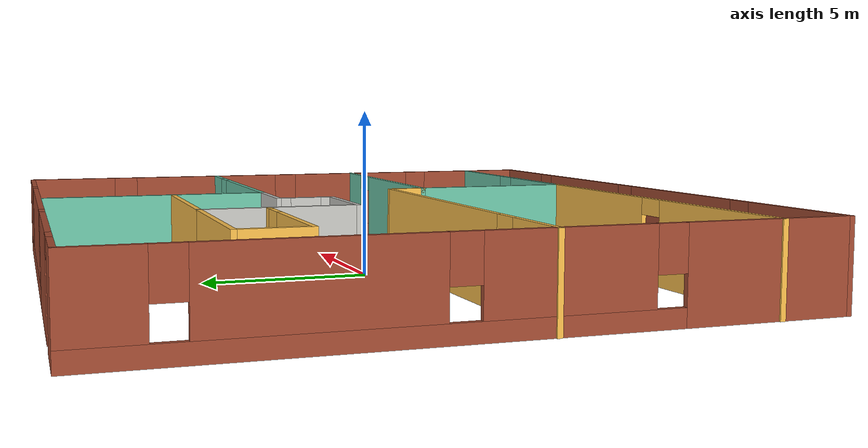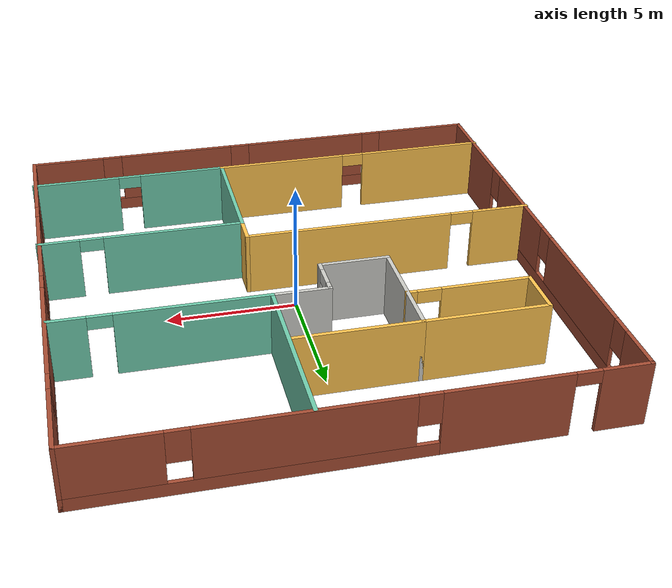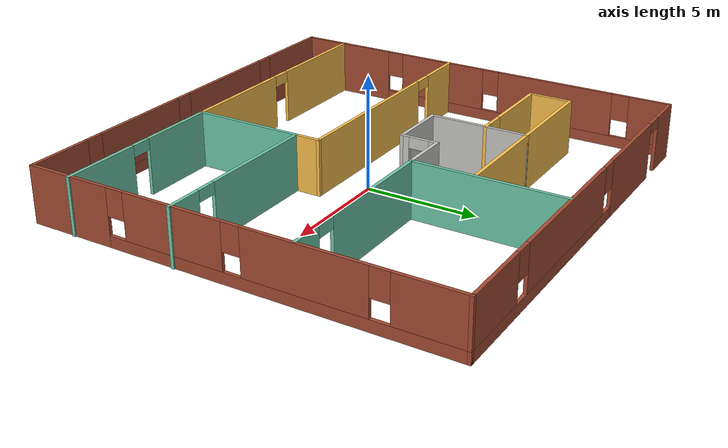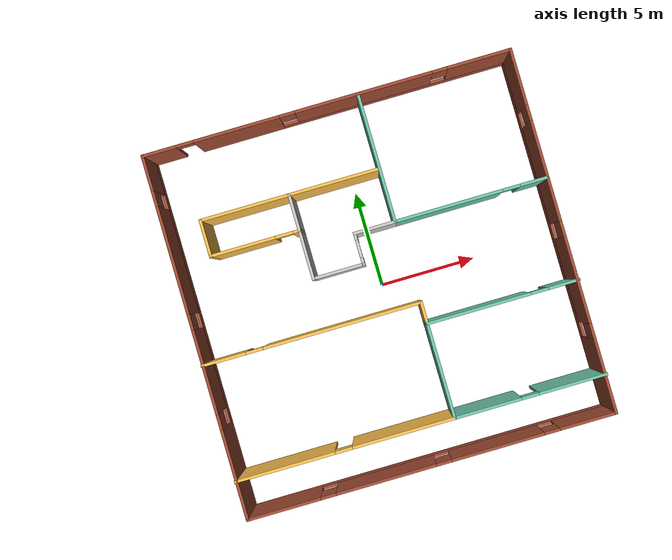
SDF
<?xml version='1.0'?>
<sdf version='1.6'>
  <model name='Building'>
    <pose frame=''>-0.153516 0.043756 0 0 -0 0</pose>
    <link name='Wall_40'>
      <pose frame=''>-0.007234 -9.425 0 0 -0 0</pose>
      <visual name='Wall_40_Visual_0'>
        <pose frame=''>-7.69377 0 1.25 0 -0 0</pose>
        <geometry>
          <box>
            <size>3.86245 0.15 2.5</size>
          </box>
        </geometry>
        <material>
          <script>
            <uri>file://media/materials/scripts/gazebo.material</uri>
            <name>Gazebo/Bricks</name>
          </script>
          <ambient>1 1 1 1</ambient>
        </material>
        <meta>
          <layer>0</layer>
        </meta>
      </visual>
      <collision name='Wall_40_Collision_0'>
        <geometry>
          <box>
            <size>3.86245 0.15 2.5</size>
          </box>
        </geometry>
        <pose frame=''>-7.69377 0 1.25 0 -0 0</pose>
      </collision>
      <visual name='Wall_40_Visual_1'>
        <pose frame=''>1.93123 0 0.25 0 -0 0</pose>
        <geometry>
          <box>
            <size>15.3875 0.15 0.5</size>
          </box>
        </geometry>
        <material>
          <script>
            <uri>file://media/materials/scripts/gazebo.material</uri>
            <name>Gazebo/Bricks</name>
          </script>
          <ambient>1 1 1 1</ambient>
        </material>
        <meta>
          <layer>0</layer>
        </meta>
      </visual>
      <collision name='Wall_40_Collision_1'>
        <geometry>
          <box>
            <size>15.3875 0.15 0.5</size>
          </box>
        </geometry>
        <pose frame=''>1.93123 0 0.25 0 -0 0</pose>
      </collision>
      <visual name='Wall_40_Visual_2'>
        <pose frame=''>-2.36255 0 1.5 0 -0 0</pose>
        <geometry>
          <box>
            <size>5.2 0.15 2</size>
          </box>
        </geometry>
        <material>
          <script>
            <uri>file://media/materials/scripts/gazebo.material</uri>
            <name>Gazebo/Bricks</name>
          </script>
          <ambient>1 1 1 1</ambient>
        </material>
        <meta>
          <layer>0</layer>
        </meta>
      </visual>
      <collision name='Wall_40_Collision_2'>
        <geometry>
          <box>
            <size>5.2 0.15 2</size>
          </box>
        </geometry>
        <pose frame=''>-2.36255 0 1.5 0 -0 0</pose>
      </collision>
      <visual name='Wall_40_Visual_3'>
        <pose frame=''>3.43745 0 1.5 0 -0 0</pose>
        <geometry>
          <box>
            <size>4.8 0.15 2</size>
          </box>
        </geometry>
        <material>
          <script>
            <uri>file://media/materials/scripts/gazebo.material</uri>
            <name>Gazebo/Bricks</name>
          </script>
          <ambient>1 1 1 1</ambient>
        </material>
        <meta>
          <layer>0</layer>
        </meta>
      </visual>
      <collision name='Wall_40_Collision_3'>
        <geometry>
          <box>
            <size>4.8 0.15 2</size>
          </box>
        </geometry>
        <pose frame=''>3.43745 0 1.5 0 -0 0</pose>
      </collision>
      <visual name='Wall_40_Visual_4'>
        <pose frame=''>8.13123 0 1.5 0 -0 0</pose>
        <geometry>
          <box>
            <size>2.98755 0.15 2</size>
          </box>
        </geometry>
        <material>
          <script>
            <uri>file://media/materials/scripts/gazebo.material</uri>
            <name>Gazebo/Bricks</name>
          </script>
          <ambient>1 1 1 1</ambient>
        </material>
        <meta>
          <layer>0</layer>
        </meta>
      </visual>
      <collision name='Wall_40_Collision_4'>
        <geometry>
          <box>
            <size>2.98755 0.15 2</size>
          </box>
        </geometry>
        <pose frame=''>8.13123 0 1.5 0 -0 0</pose>
      </collision>
      <visual name='Wall_40_Visual_5'>
        <pose frame=''>-5.36255 0 1.9 0 -0 0</pose>
        <geometry>
          <box>
            <size>0.8 0.15 1.2</size>
          </box>
        </geometry>
        <material>
          <script>
            <uri>file://media/materials/scripts/gazebo.material</uri>
            <name>Gazebo/Bricks</name>
          </script>
          <ambient>1 1 1 1</ambient>
        </material>
        <meta>
          <layer>0</layer>
        </meta>
      </visual>
      <collision name='Wall_40_Collision_5'>
        <geometry>
          <box>
            <size>0.8 0.15 1.2</size>
          </box>
        </geometry>
        <pose frame=''>-5.36255 0 1.9 0 -0 0</pose>
      </collision>
      <visual name='Wall_40_Visual_6'>
        <pose frame=''>0.637451 0 1.9 0 -0 0</pose>
        <geometry>
          <box>
            <size>0.8 0.15 1.2</size>
          </box>
        </geometry>
        <material>
          <script>
            <uri>file://media/materials/scripts/gazebo.material</uri>
            <name>Gazebo/Bricks</name>
          </script>
          <ambient>1 1 1 1</ambient>
        </material>
        <meta>
          <layer>0</layer>
        </meta>
      </visual>
      <collision name='Wall_40_Collision_6'>
        <geometry>
          <box>
            <size>0.8 0.15 1.2</size>
          </box>
        </geometry>
        <pose frame=''>0.637451 0 1.9 0 -0 0</pose>
      </collision>
      <visual name='Wall_40_Visual_7'>
        <pose frame=''>6.23745 0 1.9 0 -0 0</pose>
        <geometry>
          <box>
            <size>0.8 0.15 1.2</size>
          </box>
        </geometry>
        <material>
          <script>
            <uri>file://media/materials/scripts/gazebo.material</uri>
            <name>Gazebo/Bricks</name>
          </script>
          <ambient>1 1 1 1</ambient>
        </material>
        <meta>
          <layer>0</layer>
        </meta>
      </visual>
      <collision name='Wall_40_Collision_7'>
        <geometry>
          <box>
            <size>0.8 0.15 1.2</size>
          </box>
        </geometry>
        <pose frame=''>6.23745 0 1.9 0 -0 0</pose>
      </collision>
    </link>
    <link name='Wall_41'>
      <pose frame=''>9.54277 0 0 0 -0 1.5708</pose>
      <visual name='Wall_41_Visual_0'>
        <pose frame=''>-7.5415 0 1.25 0 -0 0</pose>
        <geometry>
          <box>
            <size>3.91699 0.15 2.5</size>
          </box>
        </geometry>
        <material>
          <script>
            <uri>file://media/materials/scripts/gazebo.material</uri>
            <name>Gazebo/Bricks</name>
          </script>
          <ambient>1 1 1 1</ambient>
        </material>
        <meta>
          <layer>0</layer>
        </meta>
      </visual>
      <collision name='Wall_41_Collision_0'>
        <geometry>
          <box>
            <size>3.91699 0.15 2.5</size>
          </box>
        </geometry>
        <pose frame=''>-7.5415 0 1.25 0 -0 0</pose>
      </collision>
      <visual name='Wall_41_Visual_1'>
        <pose frame=''>1.9585 0 0.25 0 -0 0</pose>
        <geometry>
          <box>
            <size>15.083 0.15 0.5</size>
          </box>
        </geometry>
        <material>
          <script>
            <uri>file://media/materials/scripts/gazebo.material</uri>
            <name>Gazebo/Bricks</name>
          </script>
          <ambient>1 1 1 1</ambient>
        </material>
        <meta>
          <layer>0</layer>
        </meta>
      </visual>
      <collision name='Wall_41_Collision_1'>
        <geometry>
          <box>
            <size>15.083 0.15 0.5</size>
          </box>
        </geometry>
        <pose frame=''>1.9585 0 0.25 0 -0 0</pose>
      </collision>
      <visual name='Wall_41_Visual_2'>
        <pose frame=''>-2.52301 0 1.5 0 -0 0</pose>
        <geometry>
          <box>
            <size>4.52 0.15 2</size>
          </box>
        </geometry>
        <material>
          <script>
            <uri>file://media/materials/scripts/gazebo.material</uri>
            <name>Gazebo/Bricks</name>
          </script>
          <ambient>1 1 1 1</ambient>
        </material>
        <meta>
          <layer>0</layer>
        </meta>
      </visual>
      <collision name='Wall_41_Collision_2'>
        <geometry>
          <box>
            <size>4.52 0.15 2</size>
          </box>
        </geometry>
        <pose frame=''>-2.52301 0 1.5 0 -0 0</pose>
      </collision>
      <visual name='Wall_41_Visual_3'>
        <pose frame=''>3.14888 0 1.5 0 -0 0</pose>
        <geometry>
          <box>
            <size>5.22378 0.15 2</size>
          </box>
        </geometry>
        <material>
          <script>
            <uri>file://media/materials/scripts/gazebo.material</uri>
            <name>Gazebo/Bricks</name>
          </script>
          <ambient>1 1 1 1</ambient>
        </material>
        <meta>
          <layer>0</layer>
        </meta>
      </visual>
      <collision name='Wall_41_Collision_3'>
        <geometry>
          <box>
            <size>5.22378 0.15 2</size>
          </box>
        </geometry>
        <pose frame=''>3.14888 0 1.5 0 -0 0</pose>
      </collision>
      <visual name='Wall_41_Visual_4'>
        <pose frame=''>8.03039 0 1.5 0 -0 0</pose>
        <geometry>
          <box>
            <size>2.93923 0.15 2</size>
          </box>
        </geometry>
        <material>
          <script>
            <uri>file://media/materials/scripts/gazebo.material</uri>
            <name>Gazebo/Bricks</name>
          </script>
          <ambient>1 1 1 1</ambient>
        </material>
        <meta>
          <layer>0</layer>
        </meta>
      </visual>
      <collision name='Wall_41_Collision_4'>
        <geometry>
          <box>
            <size>2.93923 0.15 2</size>
          </box>
        </geometry>
        <pose frame=''>8.03039 0 1.5 0 -0 0</pose>
      </collision>
      <visual name='Wall_41_Visual_5'>
        <pose frame=''>-5.18301 0 1.9 0 -0 0</pose>
        <geometry>
          <box>
            <size>0.8 0.15 1.2</size>
          </box>
        </geometry>
        <material>
          <script>
            <uri>file://media/materials/scripts/gazebo.material</uri>
            <name>Gazebo/Bricks</name>
          </script>
          <ambient>1 1 1 1</ambient>
        </material>
        <meta>
          <layer>0</layer>
        </meta>
      </visual>
      <collision name='Wall_41_Collision_5'>
        <geometry>
          <box>
            <size>0.8 0.15 1.2</size>
          </box>
        </geometry>
        <pose frame=''>-5.18301 0 1.9 0 -0 0</pose>
      </collision>
      <visual name='Wall_41_Visual_6'>
        <pose frame=''>0.13699 0 1.9 0 -0 0</pose>
        <geometry>
          <box>
            <size>0.8 0.15 1.2</size>
          </box>
        </geometry>
        <material>
          <script>
            <uri>file://media/materials/scripts/gazebo.material</uri>
            <name>Gazebo/Bricks</name>
          </script>
          <ambient>1 1 1 1</ambient>
        </material>
        <meta>
          <layer>0</layer>
        </meta>
      </visual>
      <collision name='Wall_41_Collision_6'>
        <geometry>
          <box>
            <size>0.8 0.15 1.2</size>
          </box>
        </geometry>
        <pose frame=''>0.13699 0 1.9 0 -0 0</pose>
      </collision>
      <visual name='Wall_41_Visual_7'>
        <pose frame=''>6.16077 0 1.9 0 -0 0</pose>
        <geometry>
          <box>
            <size>0.8 0.15 1.2</size>
          </box>
        </geometry>
        <material>
          <script>
            <uri>file://media/materials/scripts/gazebo.material</uri>
            <name>Gazebo/Bricks</name>
          </script>
          <ambient>1 1 1 1</ambient>
        </material>
        <meta>
          <layer>0</layer>
        </meta>
      </visual>
      <collision name='Wall_41_Collision_7'>
        <geometry>
          <box>
            <size>0.8 0.15 1.2</size>
          </box>
        </geometry>
        <pose frame=''>6.16077 0 1.9 0 -0 0</pose>
      </collision>
    </link>
    <link name='Wall_47'>
      <pose frame=''>-9.55723 0 0 0 -0 1.5708</pose>
      <visual name='Wall_47_Visual_0'>
        <pose frame=''>-7.1315 0 1.25 0 -0 0</pose>
        <geometry>
          <box>
            <size>4.73699 0.15 2.5</size>
          </box>
        </geometry>
        <material>
          <script>
            <uri>file://media/materials/scripts/gazebo.material</uri>
            <name>Gazebo/Bricks</name>
          </script>
          <ambient>1 1 1 1</ambient>
        </material>
        <meta>
          <layer>0</layer>
        </meta>
      </visual>
      <collision name='Wall_47_Collision_0'>
        <geometry>
          <box>
            <size>4.73699 0.15 2.5</size>
          </box>
        </geometry>
        <pose frame=''>-7.1315 0 1.25 0 -0 0</pose>
      </collision>
      <visual name='Wall_47_Visual_1'>
        <pose frame=''>2.36849 0 0.25 0 -0 0</pose>
        <geometry>
          <box>
            <size>14.263 0.15 0.5</size>
          </box>
        </geometry>
        <material>
          <script>
            <uri>file://media/materials/scripts/gazebo.material</uri>
            <name>Gazebo/Bricks</name>
          </script>
          <ambient>1 1 1 1</ambient>
        </material>
        <meta>
          <layer>0</layer>
        </meta>
      </visual>
      <collision name='Wall_47_Collision_1'>
        <geometry>
          <box>
            <size>14.263 0.15 0.5</size>
          </box>
        </geometry>
        <pose frame=''>2.36849 0 0.25 0 -0 0</pose>
      </collision>
      <visual name='Wall_47_Visual_2'>
        <pose frame=''>-1.77301 0 1.5 0 -0 0</pose>
        <geometry>
          <box>
            <size>4.38 0.15 2</size>
          </box>
        </geometry>
        <material>
          <script>
            <uri>file://media/materials/scripts/gazebo.material</uri>
            <name>Gazebo/Bricks</name>
          </script>
          <ambient>1 1 1 1</ambient>
        </material>
        <meta>
          <layer>0</layer>
        </meta>
      </visual>
      <collision name='Wall_47_Collision_2'>
        <geometry>
          <box>
            <size>4.38 0.15 2</size>
          </box>
        </geometry>
        <pose frame=''>-1.77301 0 1.5 0 -0 0</pose>
      </collision>
      <visual name='Wall_47_Visual_3'>
        <pose frame=''>4.01822 0 1.5 0 -0 0</pose>
        <geometry>
          <box>
            <size>5.60246 0.15 2</size>
          </box>
        </geometry>
        <material>
          <script>
            <uri>file://media/materials/scripts/gazebo.material</uri>
            <name>Gazebo/Bricks</name>
          </script>
          <ambient>1 1 1 1</ambient>
        </material>
        <meta>
          <layer>0</layer>
        </meta>
      </visual>
      <collision name='Wall_47_Collision_3'>
        <geometry>
          <box>
            <size>5.60246 0.15 2</size>
          </box>
        </geometry>
        <pose frame=''>4.01822 0 1.5 0 -0 0</pose>
      </collision>
      <visual name='Wall_47_Visual_4'>
        <pose frame=''>8.55972 0 1.5 0 -0 0</pose>
        <geometry>
          <box>
            <size>1.88055 0.15 2</size>
          </box>
        </geometry>
        <material>
          <script>
            <uri>file://media/materials/scripts/gazebo.material</uri>
            <name>Gazebo/Bricks</name>
          </script>
          <ambient>1 1 1 1</ambient>
        </material>
        <meta>
          <layer>0</layer>
        </meta>
      </visual>
      <collision name='Wall_47_Collision_4'>
        <geometry>
          <box>
            <size>1.88055 0.15 2</size>
          </box>
        </geometry>
        <pose frame=''>8.55972 0 1.5 0 -0 0</pose>
      </collision>
      <visual name='Wall_47_Visual_5'>
        <pose frame=''>-4.36301 0 1.9 0 -0 0</pose>
        <geometry>
          <box>
            <size>0.8 0.15 1.2</size>
          </box>
        </geometry>
        <material>
          <script>
            <uri>file://media/materials/scripts/gazebo.material</uri>
            <name>Gazebo/Bricks</name>
          </script>
          <ambient>1 1 1 1</ambient>
        </material>
        <meta>
          <layer>0</layer>
        </meta>
      </visual>
      <collision name='Wall_47_Collision_5'>
        <geometry>
          <box>
            <size>0.8 0.15 1.2</size>
          </box>
        </geometry>
        <pose frame=''>-4.36301 0 1.9 0 -0 0</pose>
      </collision>
      <visual name='Wall_47_Visual_6'>
        <pose frame=''>0.81699 0 1.9 0 -0 0</pose>
        <geometry>
          <box>
            <size>0.8 0.15 1.2</size>
          </box>
        </geometry>
        <material>
          <script>
            <uri>file://media/materials/scripts/gazebo.material</uri>
            <name>Gazebo/Bricks</name>
          </script>
          <ambient>1 1 1 1</ambient>
        </material>
        <meta>
          <layer>0</layer>
        </meta>
      </visual>
      <collision name='Wall_47_Collision_6'>
        <geometry>
          <box>
            <size>0.8 0.15 1.2</size>
          </box>
        </geometry>
        <pose frame=''>0.81699 0 1.9 0 -0 0</pose>
      </collision>
      <visual name='Wall_47_Visual_7'>
        <pose frame=''>7.21945 0 1.9 0 -0 0</pose>
        <geometry>
          <box>
            <size>0.8 0.15 1.2</size>
          </box>
        </geometry>
        <material>
          <script>
            <uri>file://media/materials/scripts/gazebo.material</uri>
            <name>Gazebo/Bricks</name>
          </script>
          <ambient>1 1 1 1</ambient>
        </material>
        <meta>
          <layer>0</layer>
        </meta>
      </visual>
      <collision name='Wall_47_Collision_7'>
        <geometry>
          <box>
            <size>0.8 0.15 1.2</size>
          </box>
        </geometry>
        <pose frame=''>7.21945 0 1.9 0 -0 0</pose>
      </collision>
    </link>
    <link name='Wall_48'>
      <pose frame=''>-0.007234 9.425 0 0 -0 0</pose>
      <visual name='Wall_48_Visual_0'>
        <pose frame=''>-8.72162 0 1.25 0 -0 0</pose>
        <geometry>
          <box>
            <size>1.80677 0.15 2.5</size>
          </box>
        </geometry>
        <material>
          <script>
            <uri>file://media/materials/scripts/gazebo.material</uri>
            <name>Gazebo/Bricks</name>
          </script>
          <ambient>1 1 1 1</ambient>
        </material>
        <meta>
          <layer>0</layer>
        </meta>
      </visual>
      <collision name='Wall_48_Collision_0'>
        <geometry>
          <box>
            <size>1.80677 0.15 2.5</size>
          </box>
        </geometry>
        <pose frame=''>-8.72162 0 1.25 0 -0 0</pose>
      </collision>
      <visual name='Wall_48_Visual_1'>
        <pose frame=''>-4.68988 0 1.25 0 -0 0</pose>
        <geometry>
          <box>
            <size>4.45671 0.15 2.5</size>
          </box>
        </geometry>
        <material>
          <script>
            <uri>file://media/materials/scripts/gazebo.material</uri>
            <name>Gazebo/Bricks</name>
          </script>
          <ambient>1 1 1 1</ambient>
        </material>
        <meta>
          <layer>0</layer>
        </meta>
      </visual>
      <collision name='Wall_48_Collision_1'>
        <geometry>
          <box>
            <size>4.45671 0.15 2.5</size>
          </box>
        </geometry>
        <pose frame=''>-4.68988 0 1.25 0 -0 0</pose>
      </collision>
      <visual name='Wall_48_Visual_2'>
        <pose frame=''>3.58174 0 0.25 0 -0 0</pose>
        <geometry>
          <box>
            <size>12.0865 0.15 0.5</size>
          </box>
        </geometry>
        <material>
          <script>
            <uri>file://media/materials/scripts/gazebo.material</uri>
            <name>Gazebo/Bricks</name>
          </script>
          <ambient>1 1 1 1</ambient>
        </material>
        <meta>
          <layer>0</layer>
        </meta>
      </visual>
      <collision name='Wall_48_Collision_2'>
        <geometry>
          <box>
            <size>12.0865 0.15 0.5</size>
          </box>
        </geometry>
        <pose frame=''>3.58174 0 0.25 0 -0 0</pose>
      </collision>
      <visual name='Wall_48_Visual_3'>
        <pose frame=''>1.90796 0 1.5 0 -0 0</pose>
        <geometry>
          <box>
            <size>7.13898 0.15 2</size>
          </box>
        </geometry>
        <material>
          <script>
            <uri>file://media/materials/scripts/gazebo.material</uri>
            <name>Gazebo/Bricks</name>
          </script>
          <ambient>1 1 1 1</ambient>
        </material>
        <meta>
          <layer>0</layer>
        </meta>
      </visual>
      <collision name='Wall_48_Collision_3'>
        <geometry>
          <box>
            <size>7.13898 0.15 2</size>
          </box>
        </geometry>
        <pose frame=''>1.90796 0 1.5 0 -0 0</pose>
      </collision>
      <visual name='Wall_48_Visual_4'>
        <pose frame=''>7.95123 0 1.5 0 -0 0</pose>
        <geometry>
          <box>
            <size>3.34755 0.15 2</size>
          </box>
        </geometry>
        <material>
          <script>
            <uri>file://media/materials/scripts/gazebo.material</uri>
            <name>Gazebo/Bricks</name>
          </script>
          <ambient>1 1 1 1</ambient>
        </material>
        <meta>
          <layer>0</layer>
        </meta>
      </visual>
      <collision name='Wall_48_Collision_4'>
        <geometry>
          <box>
            <size>3.34755 0.15 2</size>
          </box>
        </geometry>
        <pose frame=''>7.95123 0 1.5 0 -0 0</pose>
      </collision>
      <visual name='Wall_48_Visual_5'>
        <pose frame=''>-2.06152 0 1.9 0 -0 0</pose>
        <geometry>
          <box>
            <size>0.8 0.15 1.2</size>
          </box>
        </geometry>
        <material>
          <script>
            <uri>file://media/materials/scripts/gazebo.material</uri>
            <name>Gazebo/Bricks</name>
          </script>
          <ambient>1 1 1 1</ambient>
        </material>
        <meta>
          <layer>0</layer>
        </meta>
      </visual>
      <collision name='Wall_48_Collision_5'>
        <geometry>
          <box>
            <size>0.8 0.15 1.2</size>
          </box>
        </geometry>
        <pose frame=''>-2.06152 0 1.9 0 -0 0</pose>
      </collision>
      <visual name='Wall_48_Visual_6'>
        <pose frame=''>5.87745 0 1.9 0 -0 0</pose>
        <geometry>
          <box>
            <size>0.8 0.15 1.2</size>
          </box>
        </geometry>
        <material>
          <script>
            <uri>file://media/materials/scripts/gazebo.material</uri>
            <name>Gazebo/Bricks</name>
          </script>
          <ambient>1 1 1 1</ambient>
        </material>
        <meta>
          <layer>0</layer>
        </meta>
      </visual>
      <collision name='Wall_48_Collision_6'>
        <geometry>
          <box>
            <size>0.8 0.15 1.2</size>
          </box>
        </geometry>
        <pose frame=''>5.87745 0 1.9 0 -0 0</pose>
      </collision>
      <visual name='Wall_48_Visual_7'>
        <pose frame=''>-7.36823 0 2.25 0 -0 0</pose>
        <geometry>
          <box>
            <size>0.9 0.15 0.5</size>
          </box>
        </geometry>
        <material>
          <script>
            <uri>file://media/materials/scripts/gazebo.material</uri>
            <name>Gazebo/Bricks</name>
          </script>
          <ambient>1 1 1 1</ambient>
        </material>
        <meta>
          <layer>0</layer>
        </meta>
      </visual>
      <collision name='Wall_48_Collision_7'>
        <geometry>
          <box>
            <size>0.9 0.15 0.5</size>
          </box>
        </geometry>
        <pose frame=''>-7.36823 0 2.25 0 -0 0</pose>
      </collision>
    </link>
    <link name='Wall_50'>
      <collision name='Wall_50_Collision'>
        <geometry>
          <box>
            <size>6.75 0.15 2.5</size>
          </box>
        </geometry>
        <pose frame=''>0 0 1.25 0 -0 0</pose>
      </collision>
      <visual name='Wall_50_Visual'>
        <pose frame=''>0 0 1.25 0 -0 0</pose>
        <geometry>
          <box>
            <size>6.75 0.15 2.5</size>
          </box>
        </geometry>
        <material>
          <script>
            <uri>file://media/materials/scripts/gazebo.material</uri>
            <name>Gazebo/Grey</name>
          </script>
          <ambient>0.435294 0.796078 0.67451 1</ambient>
        </material>
        <meta>
          <layer>0</layer>
        </meta>
      </visual>
      <pose frame=''>1.62257 6.09198 0 0 0 -1.5708</pose>
    </link>
    <link name='Wall_51'>
      <pose frame=''>5.54757 2.79198 0 0 -0 0</pose>
      <visual name='Wall_51_Visual_0'>
        <pose frame=''>-1.15819 0 1.25 0 -0 0</pose>
        <geometry>
          <box>
            <size>5.68363 0.15 2.5</size>
          </box>
        </geometry>
        <material>
          <script>
            <uri>file://media/materials/scripts/gazebo.material</uri>
            <name>Gazebo/Grey</name>
          </script>
          <ambient>0.435294 0.796078 0.67451 1</ambient>
        </material>
        <meta>
          <layer>0</layer>
        </meta>
      </visual>
      <collision name='Wall_51_Collision_0'>
        <geometry>
          <box>
            <size>5.68363 0.15 2.5</size>
          </box>
        </geometry>
        <pose frame=''>-1.15819 0 1.25 0 -0 0</pose>
      </collision>
      <visual name='Wall_51_Visual_1'>
        <pose frame=''>3.29181 0 1.25 0 -0 0</pose>
        <geometry>
          <box>
            <size>1.41637 0.15 2.5</size>
          </box>
        </geometry>
        <material>
          <script>
            <uri>file://media/materials/scripts/gazebo.material</uri>
            <name>Gazebo/Grey</name>
          </script>
          <ambient>0.435294 0.796078 0.67451 1</ambient>
        </material>
        <meta>
          <layer>0</layer>
        </meta>
      </visual>
      <collision name='Wall_51_Collision_1'>
        <geometry>
          <box>
            <size>1.41637 0.15 2.5</size>
          </box>
        </geometry>
        <pose frame=''>3.29181 0 1.25 0 -0 0</pose>
      </collision>
      <visual name='Wall_51_Visual_2'>
        <pose frame=''>2.13363 0 2.25 0 -0 0</pose>
        <geometry>
          <box>
            <size>0.9 0.15 0.5</size>
          </box>
        </geometry>
        <material>
          <script>
            <uri>file://media/materials/scripts/gazebo.material</uri>
            <name>Gazebo/Grey</name>
          </script>
          <ambient>0.435294 0.796078 0.67451 1</ambient>
        </material>
        <meta>
          <layer>0</layer>
        </meta>
      </visual>
      <collision name='Wall_51_Collision_2'>
        <geometry>
          <box>
            <size>0.9 0.15 0.5</size>
          </box>
        </geometry>
        <pose frame=''>2.13363 0 2.25 0 -0 0</pose>
      </collision>
    </link>
    <link name='Wall_55'>
      <collision name='Wall_55_Collision'>
        <geometry>
          <box>
            <size>5.046 0.15 2.5</size>
          </box>
        </geometry>
        <pose frame=''>0 0 1.25 0 -0 0</pose>
      </collision>
      <visual name='Wall_55_Visual'>
        <pose frame=''>0 0 1.25 0 -0 0</pose>
        <geometry>
          <box>
            <size>5.046 0.15 2.5</size>
          </box>
        </geometry>
        <material>
          <script>
            <uri>file://media/materials/scripts/gazebo.material</uri>
            <name>Gazebo/Grey</name>
          </script>
          <ambient>0.435294 0.796078 0.67451 1</ambient>
        </material>
        <meta>
          <layer>0</layer>
        </meta>
      </visual>
      <pose frame=''>1.75 -4.98815 0 0 0 -1.5708</pose>
    </link>
    <link name='Wall_60'>
      <pose frame=''>5.675 -2.54015 0 0 -0 0</pose>
      <visual name='Wall_60_Visual_0'>
        <pose frame=''>-1.26753 0 1.25 0 -0 0</pose>
        <geometry>
          <box>
            <size>5.46494 0.15 2.5</size>
          </box>
        </geometry>
        <material>
          <script>
            <uri>file://media/materials/scripts/gazebo.material</uri>
            <name>Gazebo/Grey</name>
          </script>
          <ambient>0.435294 0.796078 0.67451 1</ambient>
        </material>
        <meta>
          <layer>0</layer>
        </meta>
      </visual>
      <collision name='Wall_60_Collision_0'>
        <geometry>
          <box>
            <size>5.46494 0.15 2.5</size>
          </box>
        </geometry>
        <pose frame=''>-1.26753 0 1.25 0 -0 0</pose>
      </collision>
      <visual name='Wall_60_Visual_1'>
        <pose frame=''>3.18247 0 1.25 0 -0 0</pose>
        <geometry>
          <box>
            <size>1.63506 0.15 2.5</size>
          </box>
        </geometry>
        <material>
          <script>
            <uri>file://media/materials/scripts/gazebo.material</uri>
            <name>Gazebo/Grey</name>
          </script>
          <ambient>0.435294 0.796078 0.67451 1</ambient>
        </material>
        <meta>
          <layer>0</layer>
        </meta>
      </visual>
      <collision name='Wall_60_Collision_1'>
        <geometry>
          <box>
            <size>1.63506 0.15 2.5</size>
          </box>
        </geometry>
        <pose frame=''>3.18247 0 1.25 0 -0 0</pose>
      </collision>
      <visual name='Wall_60_Visual_2'>
        <pose frame=''>1.91494 0 2.25 0 -0 0</pose>
        <geometry>
          <box>
            <size>0.9 0.15 0.5</size>
          </box>
        </geometry>
        <material>
          <script>
            <uri>file://media/materials/scripts/gazebo.material</uri>
            <name>Gazebo/Grey</name>
          </script>
          <ambient>0.435294 0.796078 0.67451 1</ambient>
        </material>
        <meta>
          <layer>0</layer>
        </meta>
      </visual>
      <collision name='Wall_60_Collision_2'>
        <geometry>
          <box>
            <size>0.9 0.15 0.5</size>
          </box>
        </geometry>
        <pose frame=''>1.91494 0 2.25 0 -0 0</pose>
      </collision>
    </link>
    <link name='Wall_62'>
      <collision name='Wall_62_Collision'>
        <geometry>
          <box>
            <size>2.25 0.15 2.5</size>
          </box>
        </geometry>
        <pose frame=''>0 0 1.25 0 -0 0</pose>
      </collision>
      <visual name='Wall_62_Visual'>
        <pose frame=''>0 0 1.25 0 -0 0</pose>
        <geometry>
          <box>
            <size>2.25 0.15 2.5</size>
          </box>
        </geometry>
        <material>
          <script>
            <uri>file://media/materials/scripts/gazebo.material</uri>
            <name>Gazebo/CeilingTiled</name>
          </script>
          <ambient>1 1 1 1</ambient>
        </material>
        <meta>
          <layer>0</layer>
        </meta>
      </visual>
      <pose frame=''>0.572568 2.79198 0 0 -0 3.14159</pose>
    </link>
    <link name='Wall_63'>
      <pose frame=''>-0.477432 1.99198 0 0 0 -1.5708</pose>
      <visual name='Wall_63_Visual_0'>
        <pose frame=''>-0.663296 0 1.25 0 -0 0</pose>
        <geometry>
          <box>
            <size>0.423409 0.15 2.5</size>
          </box>
        </geometry>
        <material>
          <script>
            <uri>file://media/materials/scripts/gazebo.material</uri>
            <name>Gazebo/CeilingTiled</name>
          </script>
          <ambient>1 1 1 1</ambient>
        </material>
        <meta>
          <layer>0</layer>
        </meta>
      </visual>
      <collision name='Wall_63_Collision_0'>
        <geometry>
          <box>
            <size>0.423409 0.15 2.5</size>
          </box>
        </geometry>
        <pose frame=''>-0.663296 0 1.25 0 -0 0</pose>
      </collision>
      <visual name='Wall_63_Visual_1'>
        <pose frame=''>0.661704 0 1.25 0 -0 0</pose>
        <geometry>
          <box>
            <size>0.426591 0.15 2.5</size>
          </box>
        </geometry>
        <material>
          <script>
            <uri>file://media/materials/scripts/gazebo.material</uri>
            <name>Gazebo/CeilingTiled</name>
          </script>
          <ambient>1 1 1 1</ambient>
        </material>
        <meta>
          <layer>0</layer>
        </meta>
      </visual>
      <collision name='Wall_63_Collision_1'>
        <geometry>
          <box>
            <size>0.426591 0.15 2.5</size>
          </box>
        </geometry>
        <pose frame=''>0.661704 0 1.25 0 -0 0</pose>
      </collision>
      <visual name='Wall_63_Visual_2'>
        <pose frame=''>-0.001591 0 2.25 0 -0 0</pose>
        <geometry>
          <box>
            <size>0.9 0.15 0.5</size>
          </box>
        </geometry>
        <material>
          <script>
            <uri>file://media/materials/scripts/gazebo.material</uri>
            <name>Gazebo/CeilingTiled</name>
          </script>
          <ambient>1 1 1 1</ambient>
        </material>
        <meta>
          <layer>0</layer>
        </meta>
      </visual>
      <collision name='Wall_63_Collision_2'>
        <geometry>
          <box>
            <size>0.9 0.15 0.5</size>
          </box>
        </geometry>
        <pose frame=''>-0.001591 0 2.25 0 -0 0</pose>
      </collision>
    </link>
    <link name='Wall_64'>
      <collision name='Wall_64_Collision'>
        <geometry>
          <box>
            <size>2.75 0.15 2.5</size>
          </box>
        </geometry>
        <pose frame=''>0 0 1.25 0 -0 0</pose>
      </collision>
      <visual name='Wall_64_Visual'>
        <pose frame=''>0 0 1.25 0 -0 0</pose>
        <geometry>
          <box>
            <size>2.75 0.15 2.5</size>
          </box>
        </geometry>
        <material>
          <script>
            <uri>file://media/materials/scripts/gazebo.material</uri>
            <name>Gazebo/CeilingTiled</name>
          </script>
          <ambient>1 1 1 1</ambient>
        </material>
        <meta>
          <layer>0</layer>
        </meta>
      </visual>
      <pose frame=''>-1.77743 1.19198 0 0 -0 3.14159</pose>
    </link>
    <link name='Wall_65'>
      <collision name='Wall_65_Collision'>
        <geometry>
          <box>
            <size>4.5 0.15 2.5</size>
          </box>
        </geometry>
        <pose frame=''>0 0 1.25 0 -0 0</pose>
      </collision>
      <visual name='Wall_65_Visual'>
        <pose frame=''>0 0 1.25 0 -0 0</pose>
        <geometry>
          <box>
            <size>4.5 0.15 2.5</size>
          </box>
        </geometry>
        <material>
          <script>
            <uri>file://media/materials/scripts/gazebo.material</uri>
            <name>Gazebo/CeilingTiled</name>
          </script>
          <ambient>1 1 1 1</ambient>
        </material>
        <meta>
          <layer>0</layer>
        </meta>
      </visual>
      <pose frame=''>-3.07743 3.36698 0 0 -0 1.5708</pose>
    </link>
    <link name='Wall_66'>
      <collision name='Wall_66_Collision'>
        <geometry>
          <box>
            <size>4.75 0.15 2.5</size>
          </box>
        </geometry>
        <pose frame=''>0 0 1.25 0 -0 0</pose>
      </collision>
      <visual name='Wall_66_Visual'>
        <pose frame=''>0 0 1.25 0 -0 0</pose>
        <geometry>
          <box>
            <size>4.75 0.15 2.5</size>
          </box>
        </geometry>
        <material>
          <script>
            <uri>file://media/materials/scripts/gazebo.material</uri>
            <name>Gazebo/Grey</name>
          </script>
          <ambient>1 0.764706 0.305882 1</ambient>
        </material>
        <meta>
          <layer>0</layer>
        </meta>
      </visual>
      <pose frame=''>-0.777432 5.54198 0 0 -0 0</pose>
    </link>
    <link name='Wall_69'>
      <collision name='Wall_69_Collision'>
        <geometry>
          <box>
            <size>4.75 0.15 2.5</size>
          </box>
        </geometry>
        <pose frame=''>0 0 1.25 0 -0 0</pose>
      </collision>
      <visual name='Wall_69_Visual'>
        <pose frame=''>0 0 1.25 0 -0 0</pose>
        <geometry>
          <box>
            <size>4.75 0.15 2.5</size>
          </box>
        </geometry>
        <material>
          <script>
            <uri>file://media/materials/scripts/gazebo.material</uri>
            <name>Gazebo/Grey</name>
          </script>
          <ambient>1 0.764706 0.305882 1</ambient>
        </material>
        <meta>
          <layer>0</layer>
        </meta>
      </visual>
      <pose frame=''>-5.37743 5.54198 0 0 -0 3.14159</pose>
    </link>
    <link name='Wall_74'>
      <collision name='Wall_74_Collision'>
        <geometry>
          <box>
            <size>2 0.15 2.5</size>
          </box>
        </geometry>
        <pose frame=''>0 0 1.25 0 -0 0</pose>
      </collision>
      <visual name='Wall_74_Visual'>
        <pose frame=''>0 0 1.25 0 -0 0</pose>
        <geometry>
          <box>
            <size>2 0.15 2.5</size>
          </box>
        </geometry>
        <material>
          <script>
            <uri>file://media/materials/scripts/gazebo.material</uri>
            <name>Gazebo/Grey</name>
          </script>
          <ambient>1 0.764706 0.305882 1</ambient>
        </material>
        <meta>
          <layer>0</layer>
        </meta>
      </visual>
      <pose frame=''>-7.67743 4.61698 0 0 0 -1.5708</pose>
    </link>
    <link name='Wall_75'>
      <pose frame=''>-5.37743 3.69198 0 0 -0 0</pose>
      <visual name='Wall_75_Visual_0'>
        <pose frame=''>-0.662511 0 1.25 0 -0 0</pose>
        <geometry>
          <box>
            <size>3.42498 0.15 2.5</size>
          </box>
        </geometry>
        <material>
          <script>
            <uri>file://media/materials/scripts/gazebo.material</uri>
            <name>Gazebo/Grey</name>
          </script>
          <ambient>1 0.764706 0.305882 1</ambient>
        </material>
        <meta>
          <layer>0</layer>
        </meta>
      </visual>
      <collision name='Wall_75_Collision_0'>
        <geometry>
          <box>
            <size>3.42498 0.15 2.5</size>
          </box>
        </geometry>
        <pose frame=''>-0.662511 0 1.25 0 -0 0</pose>
      </collision>
      <visual name='Wall_75_Visual_1'>
        <pose frame=''>2.16249 0 1.25 0 -0 0</pose>
        <geometry>
          <box>
            <size>0.425022 0.15 2.5</size>
          </box>
        </geometry>
        <material>
          <script>
            <uri>file://media/materials/scripts/gazebo.material</uri>
            <name>Gazebo/Grey</name>
          </script>
          <ambient>1 0.764706 0.305882 1</ambient>
        </material>
        <meta>
          <layer>0</layer>
        </meta>
      </visual>
      <collision name='Wall_75_Collision_1'>
        <geometry>
          <box>
            <size>0.425022 0.15 2.5</size>
          </box>
        </geometry>
        <pose frame=''>2.16249 0 1.25 0 -0 0</pose>
      </collision>
      <visual name='Wall_75_Visual_2'>
        <pose frame=''>1.49998 0 2.25 0 -0 0</pose>
        <geometry>
          <box>
            <size>0.9 0.15 0.5</size>
          </box>
        </geometry>
        <material>
          <script>
            <uri>file://media/materials/scripts/gazebo.material</uri>
            <name>Gazebo/Grey</name>
          </script>
          <ambient>1 0.764706 0.305882 1</ambient>
        </material>
        <meta>
          <layer>0</layer>
        </meta>
      </visual>
      <collision name='Wall_75_Collision_2'>
        <geometry>
          <box>
            <size>0.9 0.15 0.5</size>
          </box>
        </geometry>
        <pose frame=''>1.49998 0 2.25 0 -0 0</pose>
      </collision>
    </link>
    <link name='Wall_82'>
      <pose frame=''>5.675 -7.43615 0 0 -0 0</pose>
      <visual name='Wall_82_Visual_0'>
        <pose frame=''>-2.22568 0 1.25 0 -0 0</pose>
        <geometry>
          <box>
            <size>3.54864 0.15 2.5</size>
          </box>
        </geometry>
        <material>
          <script>
            <uri>file://media/materials/scripts/gazebo.material</uri>
            <name>Gazebo/Grey</name>
          </script>
          <ambient>0.435294 0.796078 0.67451 1</ambient>
        </material>
        <meta>
          <layer>0</layer>
        </meta>
      </visual>
      <collision name='Wall_82_Collision_0'>
        <geometry>
          <box>
            <size>3.54864 0.15 2.5</size>
          </box>
        </geometry>
        <pose frame=''>-2.22568 0 1.25 0 -0 0</pose>
      </collision>
      <visual name='Wall_82_Visual_1'>
        <pose frame=''>2.22432 0 1.25 0 -0 0</pose>
        <geometry>
          <box>
            <size>3.55136 0.15 2.5</size>
          </box>
        </geometry>
        <material>
          <script>
            <uri>file://media/materials/scripts/gazebo.material</uri>
            <name>Gazebo/Grey</name>
          </script>
          <ambient>0.435294 0.796078 0.67451 1</ambient>
        </material>
        <meta>
          <layer>0</layer>
        </meta>
      </visual>
      <collision name='Wall_82_Collision_1'>
        <geometry>
          <box>
            <size>3.55136 0.15 2.5</size>
          </box>
        </geometry>
        <pose frame=''>2.22432 0 1.25 0 -0 0</pose>
      </collision>
      <visual name='Wall_82_Visual_2'>
        <pose frame=''>-0.001359 0 2.25 0 -0 0</pose>
        <geometry>
          <box>
            <size>0.9 0.15 0.5</size>
          </box>
        </geometry>
        <material>
          <script>
            <uri>file://media/materials/scripts/gazebo.material</uri>
            <name>Gazebo/Grey</name>
          </script>
          <ambient>0.435294 0.796078 0.67451 1</ambient>
        </material>
        <meta>
          <layer>0</layer>
        </meta>
      </visual>
      <collision name='Wall_82_Collision_2'>
        <geometry>
          <box>
            <size>0.9 0.15 0.5</size>
          </box>
        </geometry>
        <pose frame=''>-0.001359 0 2.25 0 -0 0</pose>
      </collision>
    </link>
    <link name='Wall_84'>
      <pose frame=''>-3.925 -7.43615 0 0 -0 3.14159</pose>
      <visual name='Wall_84_Visual_0'>
        <pose frame=''>-3.06294 0 1.25 0 -0 0</pose>
        <geometry>
          <box>
            <size>5.37412 0.15 2.5</size>
          </box>
        </geometry>
        <material>
          <script>
            <uri>file://media/materials/scripts/gazebo.material</uri>
            <name>Gazebo/Grey</name>
          </script>
          <ambient>1 0.764706 0.305882 1</ambient>
        </material>
        <meta>
          <layer>0</layer>
        </meta>
      </visual>
      <collision name='Wall_84_Collision_0'>
        <geometry>
          <box>
            <size>5.37412 0.15 2.5</size>
          </box>
        </geometry>
        <pose frame=''>-3.06294 0 1.25 0 -0 0</pose>
      </collision>
      <visual name='Wall_84_Visual_1'>
        <pose frame=''>3.13706 0 1.25 0 -0 0</pose>
        <geometry>
          <box>
            <size>5.22588 0.15 2.5</size>
          </box>
        </geometry>
        <material>
          <script>
            <uri>file://media/materials/scripts/gazebo.material</uri>
            <name>Gazebo/Grey</name>
          </script>
          <ambient>1 0.764706 0.305882 1</ambient>
        </material>
        <meta>
          <layer>0</layer>
        </meta>
      </visual>
      <collision name='Wall_84_Collision_1'>
        <geometry>
          <box>
            <size>5.22588 0.15 2.5</size>
          </box>
        </geometry>
        <pose frame=''>3.13706 0 1.25 0 -0 0</pose>
      </collision>
      <visual name='Wall_84_Visual_2'>
        <pose frame=''>0.074124 0 2.25 0 -0 0</pose>
        <geometry>
          <box>
            <size>0.9 0.15 0.5</size>
          </box>
        </geometry>
        <material>
          <script>
            <uri>file://media/materials/scripts/gazebo.material</uri>
            <name>Gazebo/Grey</name>
          </script>
          <ambient>1 0.764706 0.305882 1</ambient>
        </material>
        <meta>
          <layer>0</layer>
        </meta>
      </visual>
      <collision name='Wall_84_Collision_2'>
        <geometry>
          <box>
            <size>0.9 0.15 0.5</size>
          </box>
        </geometry>
        <pose frame=''>0.074124 0 2.25 0 -0 0</pose>
      </collision>
    </link>
    <link name='Wall_89'>
      <collision name='Wall_89_Collision'>
        <geometry>
          <box>
            <size>1.25 0.15 2.5</size>
          </box>
        </geometry>
        <pose frame=''>0 0 1.25 0 -0 0</pose>
      </collision>
      <visual name='Wall_89_Visual'>
        <pose frame=''>0 0 1.25 0 -0 0</pose>
        <geometry>
          <box>
            <size>1.25 0.15 2.5</size>
          </box>
        </geometry>
        <material>
          <script>
            <uri>file://media/materials/scripts/gazebo.material</uri>
            <name>Gazebo/Grey</name>
          </script>
          <ambient>1 0.764706 0.305882 1</ambient>
        </material>
        <meta>
          <layer>0</layer>
        </meta>
      </visual>
      <pose frame=''>1.75 -1.99015 0 0 -0 1.5708</pose>
    </link>
    <link name='Wall_90'>
      <pose frame=''>-3.925 -1.44015 0 0 -0 3.14159</pose>
      <visual name='Wall_90_Visual_0'>
        <pose frame=''>-1.61431 0 1.25 0 -0 0</pose>
        <geometry>
          <box>
            <size>8.27139 0.15 2.5</size>
          </box>
        </geometry>
        <material>
          <script>
            <uri>file://media/materials/scripts/gazebo.material</uri>
            <name>Gazebo/Grey</name>
          </script>
          <ambient>1 0.764706 0.305882 1</ambient>
        </material>
        <meta>
          <layer>0</layer>
        </meta>
      </visual>
      <collision name='Wall_90_Collision_0'>
        <geometry>
          <box>
            <size>8.27139 0.15 2.5</size>
          </box>
        </geometry>
        <pose frame=''>-1.61431 0 1.25 0 -0 0</pose>
      </collision>
      <visual name='Wall_90_Visual_1'>
        <pose frame=''>4.58569 0 1.25 0 -0 0</pose>
        <geometry>
          <box>
            <size>2.32861 0.15 2.5</size>
          </box>
        </geometry>
        <material>
          <script>
            <uri>file://media/materials/scripts/gazebo.material</uri>
            <name>Gazebo/Grey</name>
          </script>
          <ambient>1 0.764706 0.305882 1</ambient>
        </material>
        <meta>
          <layer>0</layer>
        </meta>
      </visual>
      <collision name='Wall_90_Collision_1'>
        <geometry>
          <box>
            <size>2.32861 0.15 2.5</size>
          </box>
        </geometry>
        <pose frame=''>4.58569 0 1.25 0 -0 0</pose>
      </collision>
      <visual name='Wall_90_Visual_2'>
        <pose frame=''>2.97139 0 2.25 0 -0 0</pose>
        <geometry>
          <box>
            <size>0.9 0.15 0.5</size>
          </box>
        </geometry>
        <material>
          <script>
            <uri>file://media/materials/scripts/gazebo.material</uri>
            <name>Gazebo/Grey</name>
          </script>
          <ambient>1 0.764706 0.305882 1</ambient>
        </material>
        <meta>
          <layer>0</layer>
        </meta>
      </visual>
      <collision name='Wall_90_Collision_2'>
        <geometry>
          <box>
            <size>0.9 0.15 0.5</size>
          </box>
        </geometry>
        <pose frame=''>2.97139 0 2.25 0 -0 0</pose>
      </collision>
    </link>
    <static>1</static>
  </model>
</sdf>
